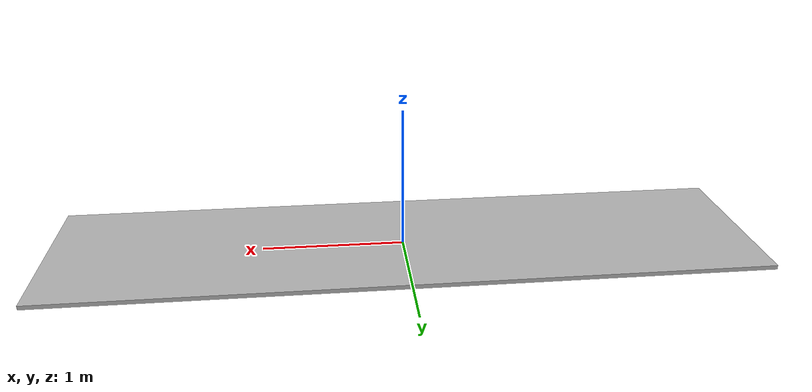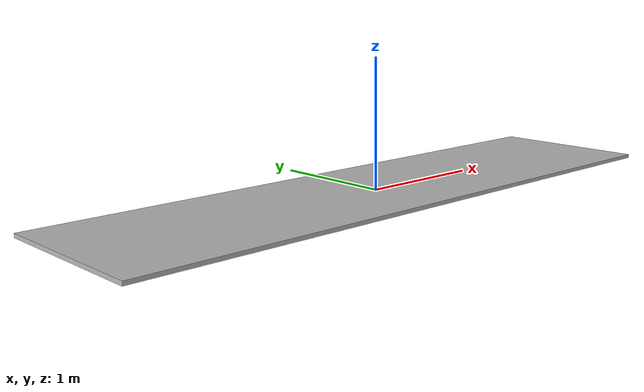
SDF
<?xml version="1.0" ?>
<sdf version="1.5">
  <model name="aisle_5m">
    <static>true</static>
    <link name="link">
      <pose>0 0 0.01 0 0 0</pose>
      <collision name="aisle_5mC">
        <geometry>
          <box>
            <size>5.0 1.3 0.03</size>
          </box>
        </geometry>
      </collision>
      <visual name="visual">
        <cast_shadows>false</cast_shadows>
        <geometry>
          <box>
            <size>5.0 1.3 0.03</size>
          </box>
        </geometry>
        <material>
          <script>
            <uri>model://aisle_5m/materials/scripts</uri>
            <uri>model://aisle_5m/materials/textures</uri>
            <name>vrc/aisle_5m</name>
          </script>
        </material>
      </visual>
    </link>
  </model>
</sdf>
